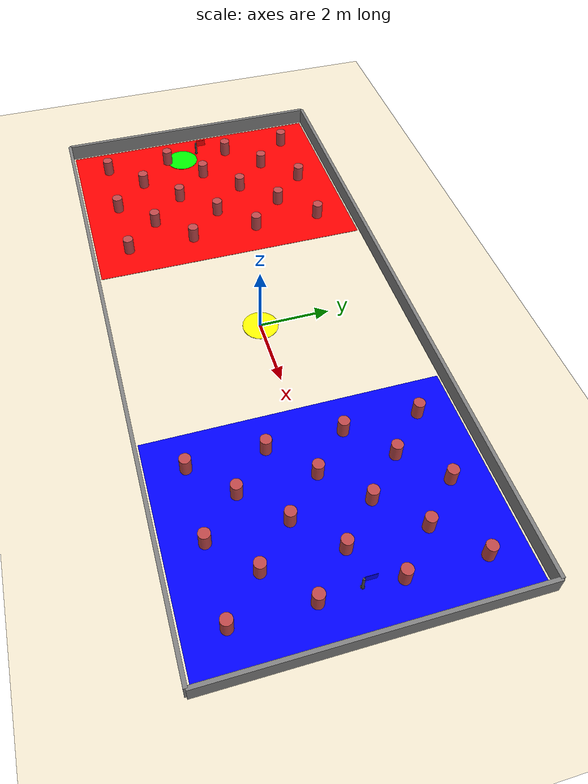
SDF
<?xml version="1.0" ?>
<!-- |    This document was autogenerated by xacro from arena_cilindros.sdf.xacro      | -->
<!-- |    EDITING THIS FILE BY HAND IS NOT RECOMMENDED                                 | -->
<sdf version="1.8">
  <!-- Gerando o SDF:
        $ xacro arena_cilindros.sdf.xacro > arena_cilindros.sdf
     -->
  <world name="capture_the_flag_world">
    <plugin filename="ignition-gazebo-physics-system" name="ignition::gazebo::systems::Physics"/>
    <plugin filename="ignition-gazebo-user-commands-system" name="ignition::gazebo::systems::UserCommands"/>
    <plugin filename="ignition-gazebo-scene-broadcaster-system" name="ignition::gazebo::systems::SceneBroadcaster"/>
    <plugin filename="ignition-gazebo-sensors-system" name="ignition::gazebo::systems::Sensors">
      <render_engine>ogre2</render_engine>
    </plugin>
    <plugin filename="libignition-gazebo-contact-system.so" name="ignition::gazebo::systems::Contact">
        </plugin>
    <scene>
      <ambient>1.0 1.0 1.0</ambient>
      <background>0.8 0.8 0.8</background>
    </scene>
    <light name="sun" type="directional">
      <cast_shadows>true</cast_shadows>
      <pose>0 0 10 0 0 0</pose>
      <diffuse>0.8 0.8 0.8 1</diffuse>
      <specular>0.2 0.2 0.2 1</specular>
      <attenuation>
        <range>1000</range>
        <constant>0.9</constant>
        <linear>0.01</linear>
        <quadratic>0.001</quadratic>
      </attenuation>
      <direction>-0.5 0.1 -0.9</direction>
    </light>
    <model name="ground_plane">
      <static>1</static>
      <self_collide>0</self_collide>
      <enable_wind>0</enable_wind>
      <kinematic>0</kinematic>
      <plugin filename="ignition-gazebo-label-system" name="ignition::gazebo::systems::Label">
        <label>5</label>
      </plugin>
      <link name="ground_plane_link">
        <collision name="ground_plane_collision">
          <geometry>
            <plane>
              <normal>0 0 1</normal>
              <size>100.0 100.0</size>
            </plane>
          </geometry>
        </collision>
        <visual name="ground_plane_visual">
          <cast_shadows>0</cast_shadows>
          <geometry>
            <plane>
              <normal>0 0 1</normal>
              <size>100.0 100.0</size>
            </plane>
          </geometry>
          <material>
            <ambient>0.94 0.90 0.81 1</ambient>
            <diffuse>0.94 0.90 0.81 1</diffuse>
            <specular>1 1 1 0</specular>
          </material>
        </visual>
      </link>
    </model>
    <model name="red_base">
      <pose>-6.0 0 0 0 0 0</pose>
      <self_collide>0</self_collide>
      <enable_wind>0</enable_wind>
      <kinematic>0</kinematic>
      <static>1</static>
      <plugin filename="ignition-gazebo-label-system" name="ignition::gazebo::systems::Label">
        <label>10</label>
      </plugin>
      <link name="red_base_link">
        <collision name="red_base_collision">
          <geometry>
            <box>
              <size>6 8 0.01</size>
            </box>
          </geometry>
        </collision>
        <visual name="red_base_visual">
          <geometry>
            <box>
              <size>6 8 0.01</size>
            </box>
          </geometry>
          <material>
            <ambient>1 0 0 1</ambient>
            <diffuse>1 0 0 1</diffuse>
          </material>
        </visual>
      </link>
    </model>
    <model name="blue_base">
      <pose>6.0 0 0 0 0 0</pose>
      <static>1</static>
      <self_collide>0</self_collide>
      <enable_wind>0</enable_wind>
      <kinematic>0</kinematic>
      <plugin filename="ignition-gazebo-label-system" name="ignition::gazebo::systems::Label">
        <label>15</label>
      </plugin>
      <link name="blue_base_link">
        <collision name="blue_base_collision">
          <geometry>
            <box>
              <size>6 8 0.01</size>
            </box>
          </geometry>
        </collision>
        <visual name="blue_base_visual">
          <geometry>
            <box>
              <size>6 8 0.01</size>
            </box>
          </geometry>
          <material>
            <ambient>0 0 1 1</ambient>
            <diffuse>0 0 1 1</diffuse>
          </material>
        </visual>
      </link>
    </model>
    <model name="red_flag">
      <static>false</static>
      <plugin filename="ignition-gazebo-label-system" name="ignition::gazebo::systems::Label">
        <label>20</label>
      </plugin>
      <link name="red_flag_link">
        <pose>-8.0 0 0.2 0 0 1.5708</pose>
        <!-- Mastro -->
        <visual name="pole_visual">
          <pose>0 0 0.2 0 0 0</pose>
          <geometry>
            <cylinder>
              <radius>0.03</radius>
              <length>0.4</length>
            </cylinder>
          </geometry>
          <material>
            <ambient>0.2 0.2 0.2 1</ambient>
            <diffuse>0.3 0.3 0.3 1</diffuse>
          </material>
        </visual>
        <!-- Painel da bandeira -->
        <visual name="red_flag_panel_visual">
          <pose>0.16 0 0.38 0 0 0</pose>
          <geometry>
            <box>
              <size>0.3 0.01 0.2</size>
            </box>
          </geometry>
          <material>
            <ambient>1 0 0 1</ambient>
            <diffuse>1 0 0 1</diffuse>
          </material>
        </visual>
        <!-- Colisão -->
        <collision name="red_flag_collision">
          <pose>0 0 0.2 0 0 0</pose>
          <geometry>
            <box>
              <size>0.06 0.06 0.4 </size>
            </box>
          </geometry>
        </collision>
        <!-- Base da bandeira (visual) -->
        <visual name="base_visual">
          <pose>0 0 0.005 0 0 0</pose>
          <geometry>
            <cylinder>
              <radius>0.05</radius>
              <length>0.01</length>
            </cylinder>
          </geometry>
          <material>
            <ambient>0.1 0.1 0.1 1</ambient>
            <diffuse>0.2 0.2 0.2 1</diffuse>
          </material>
        </visual>
        <!-- Base da bandeira (colisão) -->
        <collision name="base_collision">
          <pose>0 0 0.005 0 0 0</pose>
          <geometry>
            <box>
              <size>0.1 0.1 0.01 </size>
            </box>
          </geometry>
        </collision>
        <collision name="top_base_collision">
          <pose>0 0 0.30000000000000004 0 0 0</pose>
          <geometry>
            <box>
              <size>0.1 0.1 0.01 </size>
            </box>
          </geometry>
        </collision>
        <!-- Inércia -->
        <inertial>
          <mass>0.1</mass>
          <inertia>
            <ixx>0.001</ixx>
            <iyy>0.001</iyy>
            <izz>0.001</izz>
          </inertia>
        </inertial>
      </link>
    </model>
    <model name="blue_flag">
      <static>false</static>
      <plugin filename="ignition-gazebo-label-system" name="ignition::gazebo::systems::Label">
        <label>25</label>
      </plugin>
      <link name="blue_flag_link">
        <pose>8.0 0 0.2 0 0 1.5708</pose>
        <!-- Mastro -->
        <visual name="pole_visual">
          <pose>0 0 0.2 0 0 0</pose>
          <geometry>
            <cylinder>
              <radius>0.03</radius>
              <length>0.4</length>
            </cylinder>
          </geometry>
          <material>
            <ambient>0.2 0.2 0.2 1</ambient>
            <diffuse>0.3 0.3 0.3 1</diffuse>
          </material>
        </visual>
        <!-- Painel da bandeira -->
        <visual name="blue_flag_panel_visual">
          <pose>0.16 0 0.38 0 0 0</pose>
          <geometry>
            <box>
              <size>0.3 0.01 0.2</size>
            </box>
          </geometry>
          <material>
            <ambient>0 0 1 1</ambient>
            <diffuse>0 0 1 1</diffuse>
          </material>
        </visual>
        <!-- Colisão -->
        <collision name="blue_flag_collision">
          <pose>0 0 0.2 0 0 0</pose>
          <geometry>
            <box>
              <size>0.06 0.06 0.4 </size>
            </box>
          </geometry>
        </collision>
        <!-- Base da bandeira (visual) -->
        <visual name="base_visual">
          <pose>0 0 0.005 0 0 0</pose>
          <geometry>
            <cylinder>
              <radius>0.05</radius>
              <length>0.01</length>
            </cylinder>
          </geometry>
          <material>
            <ambient>0.1 0.1 0.1 1</ambient>
            <diffuse>0.2 0.2 0.2 1</diffuse>
          </material>
        </visual>
        <!-- Base da bandeira (colisão) -->
        <collision name="base_collision">
          <pose>0 0 0.005 0 0 0</pose>
          <geometry>
            <box>
              <size>0.1 0.1 0.01 </size>
            </box>
          </geometry>
        </collision>
        <collision name="top_base_collision">
          <pose>0 0 0.30000000000000004 0 0 0</pose>
          <geometry>
            <box>
              <size>0.1 0.1 0.01 </size>
            </box>
          </geometry>
        </collision>
        <!-- Inércia -->
        <inertial>
          <mass>0.1</mass>
          <inertia>
            <ixx>0.001</ixx>
            <iyy>0.001</iyy>
            <izz>0.001</izz>
          </inertia>
        </inertial>
      </link>
    </model>
    <model name="center_zone">
      <pose>0 0 0 0 0 0</pose>
      <static>1</static>
      <self_collide>0</self_collide>
      <enable_wind>0</enable_wind>
      <kinematic>0</kinematic>
      <plugin filename="ignition-gazebo-label-system" name="ignition::gazebo::systems::Label">
        <label>30</label>
      </plugin>
      <link name="center_zone_link">
        <collision name="center_zone_collision">
          <geometry>
            <cylinder>
              <radius>0.5</radius>
              <length>0.01</length>
            </cylinder>
          </geometry>
          <max_contacts>10</max_contacts>
        </collision>
        <visual name="center_zone_visual">
          <geometry>
            <cylinder>
              <radius>0.5</radius>
              <length>0.01</length>
            </cylinder>
          </geometry>
          <material>
            <ambient>1 1 0 1</ambient>
            <diffuse>1 1 0 1</diffuse>
          </material>
        </visual>
      </link>
    </model>
    <model name="flag_deploy_zone">
      <pose>-8 -0.5 0.01 0 0 0</pose>
      <static>1</static>
      <self_collide>0</self_collide>
      <enable_wind>0</enable_wind>
      <kinematic>0</kinematic>
      <plugin filename="ignition-gazebo-label-system" name="ignition::gazebo::systems::Label">
        <label>28</label>
      </plugin>
      <link name="flag_deploy_zone_link">
        <collision name="flag_deploy_zone_collision">
          <geometry>
            <cylinder>
              <radius>0.5</radius>
              <length>0.01</length>
            </cylinder>
          </geometry>
          <max_contacts>10</max_contacts>
        </collision>
        <visual name="flag_deploy_zone_visual">
          <geometry>
            <cylinder>
              <radius>0.5</radius>
              <length>0.01</length>
            </cylinder>
          </geometry>
          <material>
            <ambient>0 1 0 1</ambient>
            <diffuse>0 1 0 1</diffuse>
          </material>
        </visual>
      </link>
    </model>
    <model name="paredes_arena">
      <pose>0 0 0 0 0 0</pose>
      <plugin filename="ignition-gazebo-label-system" name="ignition::gazebo::systems::Label">
        <label>35</label>
      </plugin>
      <!-- Parede inferior -->
      <link name="parede_lateral_inferior">
        <pose>0 -4.1 0 0 0 0</pose>
        <collision name="col">
          <pose>0 0 0.25 0 0 0</pose>
          <geometry>
            <box>
              <size>18.2 0.1 0.5</size>
            </box>
          </geometry>
        </collision>
        <visual name="vis">
          <pose>0 0 0.25 0 0 0</pose>
          <geometry>
            <box>
              <size>18.2 0.1 0.5</size>
            </box>
          </geometry>
          <material>
            <ambient>0.5 0.5 0.5 1</ambient>
            <diffuse>0.5 0.5 0.5 1</diffuse>
            <specular>0.1 0.1 0.1 1</specular>
          </material>
        </visual>
      </link>
      <!-- Parede superior -->
      <link name="parede_lateral_superior">
        <pose>0 4.1 0 0 0 3.14159</pose>
        <collision name="col">
          <pose>0 0 0.25 0 0 0</pose>
          <geometry>
            <box>
              <size>18.2 0.1 0.5</size>
            </box>
          </geometry>
        </collision>
        <visual name="vis">
          <pose>0 0 0.25 0 0 0</pose>
          <geometry>
            <box>
              <size>18.2 0.1 0.5</size>
            </box>
          </geometry>
          <material>
            <ambient>0.5 0.5 0.5 1</ambient>
            <diffuse>0.5 0.5 0.5 1</diffuse>
            <specular>0.1 0.1 0.1 1</specular>
          </material>
        </visual>
      </link>
      <!-- Parede direita -->
      <link name="parede_fundo_blue">
        <pose>9.1 0 0 0 0 1.5708</pose>
        <collision name="col">
          <pose>0 0 0.25 0 0 0</pose>
          <geometry>
            <box>
              <size>8.2 0.1 0.5</size>
            </box>
          </geometry>
        </collision>
        <visual name="vis">
          <pose>0 0 0.25 0 0 0</pose>
          <geometry>
            <box>
              <size>8.2 0.1 0.5</size>
            </box>
          </geometry>
          <material>
            <ambient>0.5 0.5 0.5 1</ambient>
            <diffuse>0.5 0.5 0.5 1</diffuse>
            <specular>0.1 0.1 0.1 1</specular>
          </material>
        </visual>
      </link>
      <!-- Parede esquerda -->
      <link name="parede_fund_red">
        <pose>-9.1 0 0 0 0 -1.5708</pose>
        <collision name="col">
          <pose>0 0 0.25 0 0 0</pose>
          <geometry>
            <box>
              <size>8.2 0.1 0.5</size>
            </box>
          </geometry>
        </collision>
        <visual name="vis">
          <pose>0 0 0.25 0 0 0</pose>
          <geometry>
            <box>
              <size>8.2 0.1 0.5</size>
            </box>
          </geometry>
          <material>
            <ambient>0.5 0.5 0.5 1</ambient>
            <diffuse>0.5 0.5 0.5 1</diffuse>
            <specular>0.1 0.1 0.1 1</specular>
          </material>
        </visual>
      </link>
    </model>
    <include>
      <uri>ObstaculosCilindricos</uri>
      <name>obstaculos_vermelho</name>
      <pose>-9.0 -4.0 0.0 0 0 0</pose>
      <!-- Defefinindo label de obstaculos como 30 -->
      <plugin filename="ignition-gazebo-label-system" name="ignition::gazebo::systems::Label">
        <label>30</label>
      </plugin>
    </include>
    <include>
      <uri>ObstaculosCilindricos</uri>
      <name>obstaculos_azul</name>
      <pose> 3.0 -4.0 0.0 0 0 0</pose>
      <!-- Defefinindo label de obstaculos como 30 -->
      <plugin filename="ignition-gazebo-label-system" name="ignition::gazebo::systems::Label">
        <label>30</label>
      </plugin>
    </include>
  </world>
</sdf>

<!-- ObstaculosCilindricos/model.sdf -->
<!-- |    This document was autogenerated by xacro from objetos_cilindrocos.xacro.sdf  | -->
<!-- |    EDITING THIS FILE BY HAND IS NOT RECOMMENDED                                 | -->
<!-- arquivo: objetos_cilindricos.xacro -->
<!-- Gerar com:
     $ xacro objetos_cilindrocos.xacro.sdf > model.sdf
-->
<sdf version="1.8">
  <model name="obstaculos_cilindricos">
    <static>true</static>
    <link name="obstaculos">
      <collision name="um_um_collision">
        <pose>1 1 0.25 0 0 0</pose>
        <geometry>
          <cylinder>
            <radius>0.15</radius>
            <length>0.5</length>
          </cylinder>
        </geometry>
        <max_contacts>10</max_contacts>
        <surface>
          <bounce/>
          <friction>
            <ode/>
          </friction>
          <contact>
            <ode/>
          </contact>
        </surface>
      </collision>
      <visual name="um_um_visual">
        <pose>1 1 0.25 0 0 0</pose>
        <geometry>
          <cylinder>
            <radius>0.15</radius>
            <length>0.5</length>
          </cylinder>
        </geometry>
        <material>
          <ambient>.74 .28 .29 1</ambient>
          <diffuse>.74 .28 .29 1</diffuse>
          <specular>1 1 1 1</specular>
        </material>
      </visual>
      <collision name="um_tres_collision">
        <pose>1 3 0.25 0 0 0</pose>
        <geometry>
          <cylinder>
            <radius>0.15</radius>
            <length>0.5</length>
          </cylinder>
        </geometry>
        <max_contacts>10</max_contacts>
        <surface>
          <bounce/>
          <friction>
            <ode/>
          </friction>
          <contact>
            <ode/>
          </contact>
        </surface>
      </collision>
      <visual name="um_tres_visual">
        <pose>1 3 0.25 0 0 0</pose>
        <geometry>
          <cylinder>
            <radius>0.15</radius>
            <length>0.5</length>
          </cylinder>
        </geometry>
        <material>
          <ambient>.74 .28 .29 1</ambient>
          <diffuse>.74 .28 .29 1</diffuse>
          <specular>1 1 1 1</specular>
        </material>
      </visual>
      <collision name="um_cinco_collision">
        <pose>1 5 0.25 0 0 0</pose>
        <geometry>
          <cylinder>
            <radius>0.15</radius>
            <length>0.5</length>
          </cylinder>
        </geometry>
        <max_contacts>10</max_contacts>
        <surface>
          <bounce/>
          <friction>
            <ode/>
          </friction>
          <contact>
            <ode/>
          </contact>
        </surface>
      </collision>
      <visual name="um_cinco_visual">
        <pose>1 5 0.25 0 0 0</pose>
        <geometry>
          <cylinder>
            <radius>0.15</radius>
            <length>0.5</length>
          </cylinder>
        </geometry>
        <material>
          <ambient>.74 .28 .29 1</ambient>
          <diffuse>.74 .28 .29 1</diffuse>
          <specular>1 1 1 1</specular>
        </material>
      </visual>
      <collision name="um_sete_collision">
        <pose>1 7 0.25 0 0 0</pose>
        <geometry>
          <cylinder>
            <radius>0.15</radius>
            <length>0.5</length>
          </cylinder>
        </geometry>
        <max_contacts>10</max_contacts>
        <surface>
          <bounce/>
          <friction>
            <ode/>
          </friction>
          <contact>
            <ode/>
          </contact>
        </surface>
      </collision>
      <visual name="um_sete_visual">
        <pose>1 7 0.25 0 0 0</pose>
        <geometry>
          <cylinder>
            <radius>0.15</radius>
            <length>0.5</length>
          </cylinder>
        </geometry>
        <material>
          <ambient>.74 .28 .29 1</ambient>
          <diffuse>.74 .28 .29 1</diffuse>
          <specular>1 1 1 1</specular>
        </material>
      </visual>
      <collision name="dois_dois_collision">
        <pose>2 2 0.25 0 0 0</pose>
        <geometry>
          <cylinder>
            <radius>0.15</radius>
            <length>0.5</length>
          </cylinder>
        </geometry>
        <max_contacts>10</max_contacts>
        <surface>
          <bounce/>
          <friction>
            <ode/>
          </friction>
          <contact>
            <ode/>
          </contact>
        </surface>
      </collision>
      <visual name="dois_dois_visual">
        <pose>2 2 0.25 0 0 0</pose>
        <geometry>
          <cylinder>
            <radius>0.15</radius>
            <length>0.5</length>
          </cylinder>
        </geometry>
        <material>
          <ambient>.74 .28 .29 1</ambient>
          <diffuse>.74 .28 .29 1</diffuse>
          <specular>1 1 1 1</specular>
        </material>
      </visual>
      <collision name="dois_tres_collision">
        <pose>2 4 0.25 0 0 0</pose>
        <geometry>
          <cylinder>
            <radius>0.15</radius>
            <length>0.5</length>
          </cylinder>
        </geometry>
        <max_contacts>10</max_contacts>
        <surface>
          <bounce/>
          <friction>
            <ode/>
          </friction>
          <contact>
            <ode/>
          </contact>
        </surface>
      </collision>
      <visual name="dois_tres_visual">
        <pose>2 4 0.25 0 0 0</pose>
        <geometry>
          <cylinder>
            <radius>0.15</radius>
            <length>0.5</length>
          </cylinder>
        </geometry>
        <material>
          <ambient>.74 .28 .29 1</ambient>
          <diffuse>.74 .28 .29 1</diffuse>
          <specular>1 1 1 1</specular>
        </material>
      </visual>
      <collision name="dois_seis_collision">
        <pose>2 6 0.25 0 0 0</pose>
        <geometry>
          <cylinder>
            <radius>0.15</radius>
            <length>0.5</length>
          </cylinder>
        </geometry>
        <max_contacts>10</max_contacts>
        <surface>
          <bounce/>
          <friction>
            <ode/>
          </friction>
          <contact>
            <ode/>
          </contact>
        </surface>
      </collision>
      <visual name="dois_seis_visual">
        <pose>2 6 0.25 0 0 0</pose>
        <geometry>
          <cylinder>
            <radius>0.15</radius>
            <length>0.5</length>
          </cylinder>
        </geometry>
        <material>
          <ambient>.74 .28 .29 1</ambient>
          <diffuse>.74 .28 .29 1</diffuse>
          <specular>1 1 1 1</specular>
        </material>
      </visual>
      <collision name="tres_um_collision">
        <pose>3 1 0.25 0 0 0</pose>
        <geometry>
          <cylinder>
            <radius>0.15</radius>
            <length>0.5</length>
          </cylinder>
        </geometry>
        <max_contacts>10</max_contacts>
        <surface>
          <bounce/>
          <friction>
            <ode/>
          </friction>
          <contact>
            <ode/>
          </contact>
        </surface>
      </collision>
      <visual name="tres_um_visual">
        <pose>3 1 0.25 0 0 0</pose>
        <geometry>
          <cylinder>
            <radius>0.15</radius>
            <length>0.5</length>
          </cylinder>
        </geometry>
        <material>
          <ambient>.74 .28 .29 1</ambient>
          <diffuse>.74 .28 .29 1</diffuse>
          <specular>1 1 1 1</specular>
        </material>
      </visual>
      <collision name="tres_tres_collision">
        <pose>3 3 0.25 0 0 0</pose>
        <geometry>
          <cylinder>
            <radius>0.15</radius>
            <length>0.5</length>
          </cylinder>
        </geometry>
        <max_contacts>10</max_contacts>
        <surface>
          <bounce/>
          <friction>
            <ode/>
          </friction>
          <contact>
            <ode/>
          </contact>
        </surface>
      </collision>
      <visual name="tres_tres_visual">
        <pose>3 3 0.25 0 0 0</pose>
        <geometry>
          <cylinder>
            <radius>0.15</radius>
            <length>0.5</length>
          </cylinder>
        </geometry>
        <material>
          <ambient>.74 .28 .29 1</ambient>
          <diffuse>.74 .28 .29 1</diffuse>
          <specular>1 1 1 1</specular>
        </material>
      </visual>
      <collision name="tres_cinco_collision">
        <pose>3 5 0.25 0 0 0</pose>
        <geometry>
          <cylinder>
            <radius>0.15</radius>
            <length>0.5</length>
          </cylinder>
        </geometry>
        <max_contacts>10</max_contacts>
        <surface>
          <bounce/>
          <friction>
            <ode/>
          </friction>
          <contact>
            <ode/>
          </contact>
        </surface>
      </collision>
      <visual name="tres_cinco_visual">
        <pose>3 5 0.25 0 0 0</pose>
        <geometry>
          <cylinder>
            <radius>0.15</radius>
            <length>0.5</length>
          </cylinder>
        </geometry>
        <material>
          <ambient>.74 .28 .29 1</ambient>
          <diffuse>.74 .28 .29 1</diffuse>
          <specular>1 1 1 1</specular>
        </material>
      </visual>
      <collision name="tres_sete_collision">
        <pose>3 7 0.25 0 0 0</pose>
        <geometry>
          <cylinder>
            <radius>0.15</radius>
            <length>0.5</length>
          </cylinder>
        </geometry>
        <max_contacts>10</max_contacts>
        <surface>
          <bounce/>
          <friction>
            <ode/>
          </friction>
          <contact>
            <ode/>
          </contact>
        </surface>
      </collision>
      <visual name="tres_sete_visual">
        <pose>3 7 0.25 0 0 0</pose>
        <geometry>
          <cylinder>
            <radius>0.15</radius>
            <length>0.5</length>
          </cylinder>
        </geometry>
        <material>
          <ambient>.74 .28 .29 1</ambient>
          <diffuse>.74 .28 .29 1</diffuse>
          <specular>1 1 1 1</specular>
        </material>
      </visual>
      <collision name="quatro_dois_collision">
        <pose>4 2 0.25 0 0 0</pose>
        <geometry>
          <cylinder>
            <radius>0.15</radius>
            <length>0.5</length>
          </cylinder>
        </geometry>
        <max_contacts>10</max_contacts>
        <surface>
          <bounce/>
          <friction>
            <ode/>
          </friction>
          <contact>
            <ode/>
          </contact>
        </surface>
      </collision>
      <visual name="quatro_dois_visual">
        <pose>4 2 0.25 0 0 0</pose>
        <geometry>
          <cylinder>
            <radius>0.15</radius>
            <length>0.5</length>
          </cylinder>
        </geometry>
        <material>
          <ambient>.74 .28 .29 1</ambient>
          <diffuse>.74 .28 .29 1</diffuse>
          <specular>1 1 1 1</specular>
        </material>
      </visual>
      <collision name="quatro_tres_collision">
        <pose>4 4 0.25 0 0 0</pose>
        <geometry>
          <cylinder>
            <radius>0.15</radius>
            <length>0.5</length>
          </cylinder>
        </geometry>
        <max_contacts>10</max_contacts>
        <surface>
          <bounce/>
          <friction>
            <ode/>
          </friction>
          <contact>
            <ode/>
          </contact>
        </surface>
      </collision>
      <visual name="quatro_tres_visual">
        <pose>4 4 0.25 0 0 0</pose>
        <geometry>
          <cylinder>
            <radius>0.15</radius>
            <length>0.5</length>
          </cylinder>
        </geometry>
        <material>
          <ambient>.74 .28 .29 1</ambient>
          <diffuse>.74 .28 .29 1</diffuse>
          <specular>1 1 1 1</specular>
        </material>
      </visual>
      <collision name="quatro_seis_collision">
        <pose>4 6 0.25 0 0 0</pose>
        <geometry>
          <cylinder>
            <radius>0.15</radius>
            <length>0.5</length>
          </cylinder>
        </geometry>
        <max_contacts>10</max_contacts>
        <surface>
          <bounce/>
          <friction>
            <ode/>
          </friction>
          <contact>
            <ode/>
          </contact>
        </surface>
      </collision>
      <visual name="quatro_seis_visual">
        <pose>4 6 0.25 0 0 0</pose>
        <geometry>
          <cylinder>
            <radius>0.15</radius>
            <length>0.5</length>
          </cylinder>
        </geometry>
        <material>
          <ambient>.74 .28 .29 1</ambient>
          <diffuse>.74 .28 .29 1</diffuse>
          <specular>1 1 1 1</specular>
        </material>
      </visual>
      <collision name="cinco_um_collision">
        <pose>5 1 0.25 0 0 0</pose>
        <geometry>
          <cylinder>
            <radius>0.15</radius>
            <length>0.5</length>
          </cylinder>
        </geometry>
        <max_contacts>10</max_contacts>
        <surface>
          <bounce/>
          <friction>
            <ode/>
          </friction>
          <contact>
            <ode/>
          </contact>
        </surface>
      </collision>
      <visual name="cinco_um_visual">
        <pose>5 1 0.25 0 0 0</pose>
        <geometry>
          <cylinder>
            <radius>0.15</radius>
            <length>0.5</length>
          </cylinder>
        </geometry>
        <material>
          <ambient>.74 .28 .29 1</ambient>
          <diffuse>.74 .28 .29 1</diffuse>
          <specular>1 1 1 1</specular>
        </material>
      </visual>
      <collision name="cinco_tres_collision">
        <pose>5 3 0.25 0 0 0</pose>
        <geometry>
          <cylinder>
            <radius>0.15</radius>
            <length>0.5</length>
          </cylinder>
        </geometry>
        <max_contacts>10</max_contacts>
        <surface>
          <bounce/>
          <friction>
            <ode/>
          </friction>
          <contact>
            <ode/>
          </contact>
        </surface>
      </collision>
      <visual name="cinco_tres_visual">
        <pose>5 3 0.25 0 0 0</pose>
        <geometry>
          <cylinder>
            <radius>0.15</radius>
            <length>0.5</length>
          </cylinder>
        </geometry>
        <material>
          <ambient>.74 .28 .29 1</ambient>
          <diffuse>.74 .28 .29 1</diffuse>
          <specular>1 1 1 1</specular>
        </material>
      </visual>
      <collision name="cinco_cinco_collision">
        <pose>5 5 0.25 0 0 0</pose>
        <geometry>
          <cylinder>
            <radius>0.15</radius>
            <length>0.5</length>
          </cylinder>
        </geometry>
        <max_contacts>10</max_contacts>
        <surface>
          <bounce/>
          <friction>
            <ode/>
          </friction>
          <contact>
            <ode/>
          </contact>
        </surface>
      </collision>
      <visual name="cinco_cinco_visual">
        <pose>5 5 0.25 0 0 0</pose>
        <geometry>
          <cylinder>
            <radius>0.15</radius>
            <length>0.5</length>
          </cylinder>
        </geometry>
        <material>
          <ambient>.74 .28 .29 1</ambient>
          <diffuse>.74 .28 .29 1</diffuse>
          <specular>1 1 1 1</specular>
        </material>
      </visual>
      <collision name="cinco_sete_collision">
        <pose>5 7 0.25 0 0 0</pose>
        <geometry>
          <cylinder>
            <radius>0.15</radius>
            <length>0.5</length>
          </cylinder>
        </geometry>
        <max_contacts>10</max_contacts>
        <surface>
          <bounce/>
          <friction>
            <ode/>
          </friction>
          <contact>
            <ode/>
          </contact>
        </surface>
      </collision>
      <visual name="cinco_sete_visual">
        <pose>5 7 0.25 0 0 0</pose>
        <geometry>
          <cylinder>
            <radius>0.15</radius>
            <length>0.5</length>
          </cylinder>
        </geometry>
        <material>
          <ambient>.74 .28 .29 1</ambient>
          <diffuse>.74 .28 .29 1</diffuse>
          <specular>1 1 1 1</specular>
        </material>
      </visual>
    </link>
  </model>
</sdf>
